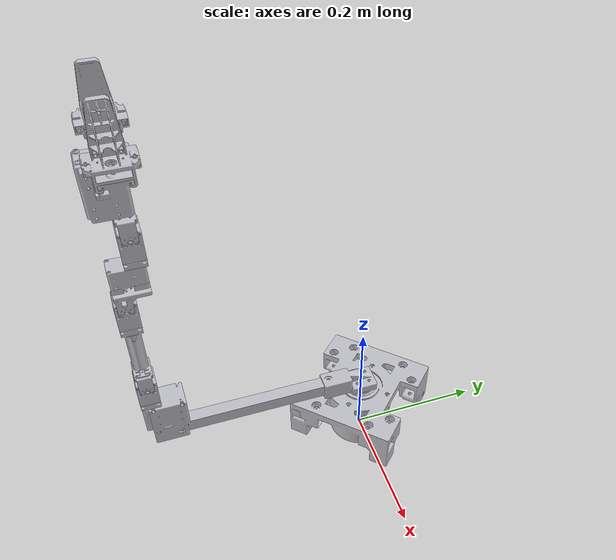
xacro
<?xml version="1.0" ?>
<robot name="Assembly" xmlns:xacro="http://www.ros.org/wiki/xacro">

<xacro:include filename="$(find Assembly_description)/urdf/materials.xacro" />
<xacro:include filename="$(find Assembly_description)/urdf/Assembly.trans" />
<xacro:include filename="$(find Assembly_description)/urdf/Assembly.gazebo" />
<link name="base_link">
  <inertial>
    <origin xyz="-0.00020258722115995613 6.802091845380796e-05 0.0601165448188115" rpy="0 0 0"/>
    <mass value="5.908289859098361"/>
    <inertia ixx="0.015691" iyy="0.015684" izz="0.023887" ixy="0.000874" iyz="-6e-06" ixz="1.5e-05"/>
  </inertial>
  <visual>
    <origin xyz="0 0 0" rpy="0 0 0"/>
    <geometry>
      <mesh filename="file://$(find Assembly_description)/meshes/base_link.stl" scale="0.001 0.001 0.001"/>
    </geometry>
    <material name="silver"/>
  </visual>
  <collision>
    <origin xyz="0 0 0" rpy="0 0 0"/>
    <geometry>
      <mesh filename="file://$(find Assembly_description)/meshes/base_link.stl" scale="0.001 0.001 0.001"/>
    </geometry>
  </collision>
</link>

<link name="link0_1">
  <inertial>
    <origin xyz="-1.4279446712328615e-06 -0.22440691293762868 0.03599964264761413" rpy="0 0 0"/>
    <mass value="2.0231717473852924"/>
    <inertia ixx="0.029528" iyy="0.001439" izz="0.028522" ixy="-0.0" iyz="0.003713" ixz="-0.0"/>
  </inertial>
  <visual>
    <origin xyz="0.0 -0.0 -0.094" rpy="0 0 0"/>
    <geometry>
      <mesh filename="file://$(find Assembly_description)/meshes/link0_1.stl" scale="0.001 0.001 0.001"/>
    </geometry>
    <material name="silver"/>
  </visual>
  <collision>
    <origin xyz="0.0 -0.0 -0.094" rpy="0 0 0"/>
    <geometry>
      <mesh filename="file://$(find Assembly_description)/meshes/link0_1.stl" scale="0.001 0.001 0.001"/>
    </geometry>
  </collision>
</link>

<link name="link1_1">
  <inertial>
    <origin xyz="0.0009707925157747384 -2.958286951981748e-05 0.02755437155530177" rpy="0 0 0"/>
    <mass value="0.3533467828136892"/>
    <inertia ixx="9.4e-05" iyy="0.000108" izz="5.9e-05" ixy="0.0" iyz="0.0" ixz="-0.0"/>
  </inertial>
  <visual>
    <origin xyz="-0.0 0.32475 -0.1771" rpy="0 0 0"/>
    <geometry>
      <mesh filename="file://$(find Assembly_description)/meshes/link1_1.stl" scale="0.001 0.001 0.001"/>
    </geometry>
    <material name="silver"/>
  </visual>
  <collision>
    <origin xyz="-0.0 0.32475 -0.1771" rpy="0 0 0"/>
    <geometry>
      <mesh filename="file://$(find Assembly_description)/meshes/link1_1.stl" scale="0.001 0.001 0.001"/>
    </geometry>
  </collision>
</link>

<link name="link2_1">
  <inertial>
    <origin xyz="0.019514945267649186 7.69509938537416e-05 0.11144075942786386" rpy="0 0 0"/>
    <mass value="0.5131079628057971"/>
    <inertia ixx="0.000915" iyy="0.000941" izz="8.3e-05" ixy="-0.0" iyz="-1e-06" ixz="-7e-06"/>
  </inertial>
  <visual>
    <origin xyz="0.018602 0.324781 -0.217312" rpy="0 0 0"/>
    <geometry>
      <mesh filename="file://$(find Assembly_description)/meshes/link2_1.stl" scale="0.001 0.001 0.001"/>
    </geometry>
    <material name="silver"/>
  </visual>
  <collision>
    <origin xyz="0.018602 0.324781 -0.217312" rpy="0 0 0"/>
    <geometry>
      <mesh filename="file://$(find Assembly_description)/meshes/link2_1.stl" scale="0.001 0.001 0.001"/>
    </geometry>
  </collision>
</link>

<link name="link3_1">
  <inertial>
    <origin xyz="0.019839977464722606 0.012070669534834821 0.043680878099196074" rpy="0 0 0"/>
    <mass value="0.36881283014845634"/>
    <inertia ixx="0.000119" iyy="8.1e-05" izz="9.6e-05" ixy="-0.0" iyz="-4e-06" ixz="-1e-06"/>
  </inertial>
  <visual>
    <origin xyz="0.018507 0.324702 -0.366025" rpy="0 0 0"/>
    <geometry>
      <mesh filename="file://$(find Assembly_description)/meshes/link3_1.stl" scale="0.001 0.001 0.001"/>
    </geometry>
    <material name="silver"/>
  </visual>
  <collision>
    <origin xyz="0.018507 0.324702 -0.366025" rpy="0 0 0"/>
    <geometry>
      <mesh filename="file://$(find Assembly_description)/meshes/link3_1.stl" scale="0.001 0.001 0.001"/>
    </geometry>
  </collision>
</link>

<link name="link4_1">
  <inertial>
    <origin xyz="0.0006113076874289041 -4.946065651489917e-08 0.027806336367662998" rpy="0 0 0"/>
    <mass value="0.35377336927954606"/>
    <inertia ixx="9.4e-05" iyy="0.000109" izz="5.9e-05" ixy="-0.0" iyz="-0.0" ixz="-0.0"/>
  </inertial>
  <visual>
    <origin xyz="-0.00142 0.30075 -0.430091" rpy="0 0 0"/>
    <geometry>
      <mesh filename="file://$(find Assembly_description)/meshes/link4_1.stl" scale="0.001 0.001 0.001"/>
    </geometry>
    <material name="silver"/>
  </visual>
  <collision>
    <origin xyz="-0.00142 0.30075 -0.430091" rpy="0 0 0"/>
    <geometry>
      <mesh filename="file://$(find Assembly_description)/meshes/link4_1.stl" scale="0.001 0.001 0.001"/>
    </geometry>
  </collision>
</link>

<link name="link5_1">
  <inertial>
    <origin xyz="0.019000247976476096 -4.946150622409107e-08 0.02037366068525026" rpy="0 0 0"/>
    <mass value="0.03437095087225083"/>
    <inertia ixx="4e-06" iyy="1.2e-05" izz="1.1e-05" ixy="-0.0" iyz="-0.0" ixz="-0.0"/>
  </inertial>
  <visual>
    <origin xyz="0.01758 0.30075 -0.470591" rpy="0 0 0"/>
    <geometry>
      <mesh filename="file://$(find Assembly_description)/meshes/link5_1.stl" scale="0.001 0.001 0.001"/>
    </geometry>
    <material name="silver"/>
  </visual>
  <collision>
    <origin xyz="0.01758 0.30075 -0.470591" rpy="0 0 0"/>
    <geometry>
      <mesh filename="file://$(find Assembly_description)/meshes/link5_1.stl" scale="0.001 0.001 0.001"/>
    </geometry>
  </collision>
</link>

<link name="link6_1">
  <inertial>
    <origin xyz="5.694063936358042e-06 -0.011015333141452477 0.04451400707946601" rpy="0 0 0"/>
    <mass value="1.1255874884525978"/>
    <inertia ixx="0.000872" iyy="0.000959" izz="0.000591" ixy="0.0" iyz="-5.4e-05" ixz="-0.0"/>
  </inertial>
  <visual>
    <origin xyz="-0.00142 0.30075 -0.499091" rpy="0 0 0"/>
    <geometry>
      <mesh filename="file://$(find Assembly_description)/meshes/link6_1.stl" scale="0.001 0.001 0.001"/>
    </geometry>
    <material name="silver"/>
  </visual>
  <collision>
    <origin xyz="-0.00142 0.30075 -0.499091" rpy="0 0 0"/>
    <geometry>
      <mesh filename="file://$(find Assembly_description)/meshes/link6_1.stl" scale="0.001 0.001 0.001"/>
    </geometry>
  </collision>
</link>

<link name="left_gripper_1">
  <inertial>
    <origin xyz="-0.0044085449522264855 0.014825259872794816 0.03034676915371126" rpy="0 0 0"/>
    <mass value="0.21267710358543498"/>
    <inertia ixx="0.000148" iyy="0.000116" izz="6.2e-05" ixy="0.0" iyz="-0.0" ixz="-1.7e-05"/>
  </inertial>
  <visual>
    <origin xyz="0.040358 0.316595 -0.572677" rpy="0 0 0"/>
    <geometry>
      <mesh filename="file://$(find Assembly_description)/meshes/left_gripper_1.stl" scale="0.001 0.001 0.001"/>
    </geometry>
    <material name="silver"/>
  </visual>
  <collision>
    <origin xyz="0.040358 0.316595 -0.572677" rpy="0 0 0"/>
    <geometry>
      <mesh filename="file://$(find Assembly_description)/meshes/left_gripper_1.stl" scale="0.001 0.001 0.001"/>
    </geometry>
  </collision>
</link>

<link name="right_gripper_1">
  <inertial>
    <origin xyz="0.0069650408933078015 -0.017381443807131414 0.030346769153769215" rpy="0 0 0"/>
    <mass value="0.21267710358543448"/>
    <inertia ixx="0.000148" iyy="0.000116" izz="6.2e-05" ixy="0.0" iyz="0.0" ixz="1.7e-05"/>
  </inertial>
  <visual>
    <origin xyz="-0.040642 0.284195 -0.572677" rpy="0 0 0"/>
    <geometry>
      <mesh filename="file://$(find Assembly_description)/meshes/right_gripper_1.stl" scale="0.001 0.001 0.001"/>
    </geometry>
    <material name="silver"/>
  </visual>
  <collision>
    <origin xyz="-0.040642 0.284195 -0.572677" rpy="0 0 0"/>
    <geometry>
      <mesh filename="file://$(find Assembly_description)/meshes/right_gripper_1.stl" scale="0.001 0.001 0.001"/>
    </geometry>
  </collision>
</link>

<joint name="joint0" type="continuous">
  <origin xyz="0.0 0.0 0.094" rpy="0 0 0"/>
  <parent link="base_link"/>
  <child link="link0_1"/>
  <axis xyz="0.0 -0.0 -1.0"/>
</joint>

<joint name="joint1" type="continuous">
  <origin xyz="0.0 -0.32475 0.0831" rpy="0 0 0"/>
  <parent link="link0_1"/>
  <child link="link1_1"/>
  <axis xyz="0.0 0.0 1.0"/>
</joint>

<joint name="joint2" type="continuous">
  <origin xyz="-0.018602 -3.1e-05 0.040212" rpy="0 0 0"/>
  <parent link="link1_1"/>
  <child link="link2_1"/>
  <axis xyz="-1.0 0.0 0.0"/>
</joint>

<joint name="joint3" type="continuous">
  <origin xyz="9.5e-05 7.9e-05 0.148713" rpy="0 0 0"/>
  <parent link="link2_1"/>
  <child link="link3_1"/>
  <axis xyz="-1.0 0.0 0.0"/>
</joint>

<joint name="joint4" type="continuous">
  <origin xyz="0.019927 0.023952 0.064066" rpy="0 0 0"/>
  <parent link="link3_1"/>
  <child link="link4_1"/>
  <axis xyz="0.0 0.0 1.0"/>
</joint>

<joint name="joint5" type="continuous">
  <origin xyz="-0.019 0.0 0.0405" rpy="0 0 0"/>
  <parent link="link4_1"/>
  <child link="link5_1"/>
  <axis xyz="-1.0 -0.0 0.0"/>
</joint>

<joint name="joint6" type="continuous">
  <origin xyz="0.019 0.0 0.0285" rpy="0 0 0"/>
  <parent link="link5_1"/>
  <child link="link6_1"/>
  <axis xyz="0.0 0.0 1.0"/>
</joint>

<joint name="leftgripper" type="prismatic">
  <origin xyz="-0.041778 -0.015845 0.073586" rpy="0 0 0"/>
  <parent link="link6_1"/>
  <child link="left_gripper_1"/>
  <axis xyz="1.0 0.0 0.0"/>
  <limit upper="0.0" lower="0.0" effort="100" velocity="100"/>
</joint>

<joint name="rightgripper" type="prismatic">
  <origin xyz="0.039222 0.016555 0.073586" rpy="0 0 0"/>
  <parent link="link6_1"/>
  <child link="right_gripper_1"/>
  <axis xyz="1.0 0.0 0.0"/>
  <limit upper="0.0" lower="0.0" effort="100" velocity="100"/>
</joint>

</robot>

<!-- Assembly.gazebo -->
<robot name="Assembly" xmlns:xacro="http://www.ros.org/wiki/xacro" >

<xacro:property name="body_color" value="Gazebo/Silver" />

<gazebo>
  <plugin name="control" filename="libgazebo_ros_control.so"/>
</gazebo>
<gazebo reference="base_link">
  <material>${body_color}</material>
  <mu1>0.2</mu1>
  <mu2>0.2</mu2>
  <self_collide>true</self_collide>
  <gravity>true</gravity>
</gazebo>

<gazebo reference="link0_1">
  <material>${body_color}</material>
  <mu1>0.2</mu1>
  <mu2>0.2</mu2>
  <self_collide>true</self_collide>
</gazebo>

<gazebo reference="link1_1">
  <material>${body_color}</material>
  <mu1>0.2</mu1>
  <mu2>0.2</mu2>
  <self_collide>true</self_collide>
</gazebo>

<gazebo reference="link2_1">
  <material>${body_color}</material>
  <mu1>0.2</mu1>
  <mu2>0.2</mu2>
  <self_collide>true</self_collide>
</gazebo>

<gazebo reference="link3_1">
  <material>${body_color}</material>
  <mu1>0.2</mu1>
  <mu2>0.2</mu2>
  <self_collide>true</self_collide>
</gazebo>

<gazebo reference="link4_1">
  <material>${body_color}</material>
  <mu1>0.2</mu1>
  <mu2>0.2</mu2>
  <self_collide>true</self_collide>
</gazebo>

<gazebo reference="link5_1">
  <material>${body_color}</material>
  <mu1>0.2</mu1>
  <mu2>0.2</mu2>
  <self_collide>true</self_collide>
</gazebo>

<gazebo reference="link6_1">
  <material>${body_color}</material>
  <mu1>0.2</mu1>
  <mu2>0.2</mu2>
  <self_collide>true</self_collide>
</gazebo>

<gazebo reference="left_gripper_1">
  <material>${body_color}</material>
  <mu1>0.2</mu1>
  <mu2>0.2</mu2>
  <self_collide>true</self_collide>
</gazebo>

<gazebo reference="right_gripper_1">
  <material>${body_color}</material>
  <mu1>0.2</mu1>
  <mu2>0.2</mu2>
  <self_collide>true</self_collide>
</gazebo>

</robot>
